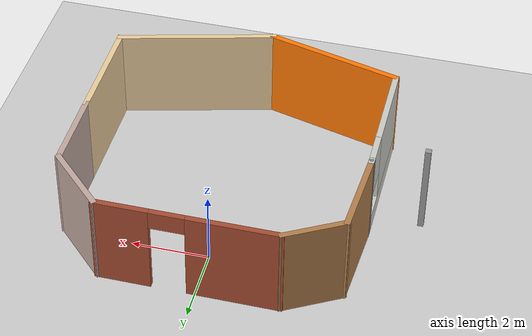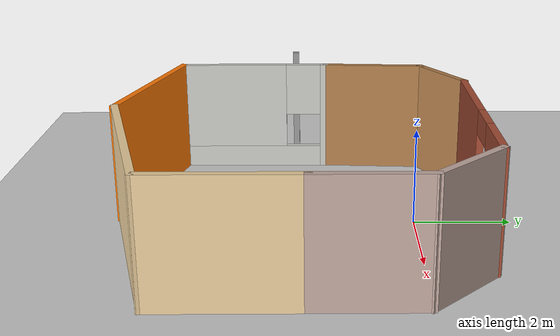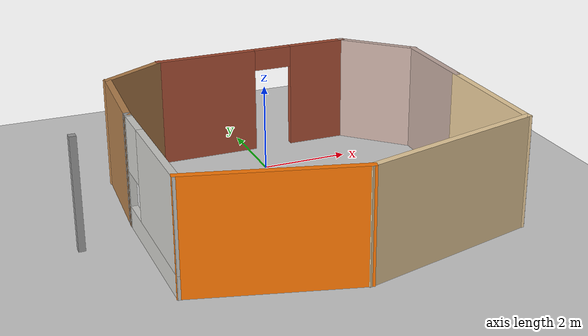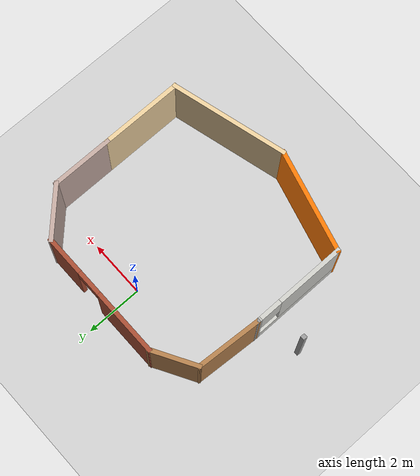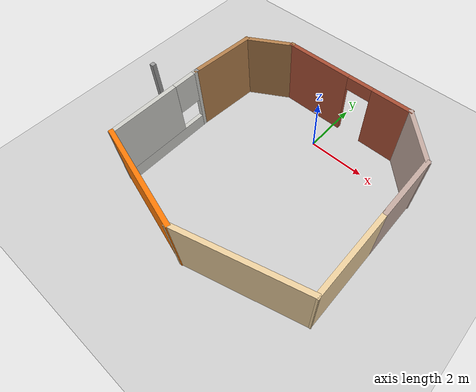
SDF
<sdf version="1.7">
 <world name="default">
  <light name="sun" type="directional">
   <pose>0 0 10 0 -0 0</pose>
   <diffuse>0.8 0.8 0.8 1</diffuse>
   <specular>0.2 0.2 0.2 1</specular>
   <attenuation>
    <range>1000</range>
    <constant>0.9</constant>
    <linear>0.01</linear>
    <quadratic>0.001</quadratic>
   </attenuation>
   <direction>-0.5 0.1 -0.9</direction>
   <spot><inner_angle>0</inner_angle><outer_angle>0</outer_angle><falloff>0</falloff></spot>
  </light>
  <model name="ground_plane">
   <static>1</static>
   <link name="link">
    <collision name="collision">
     <geometry><plane><normal>0 0 1</normal><size>100 100</size></plane></geometry>
     <surface>
      <contact><collide_bitmask>65535</collide_bitmask></contact>
      <friction><ode><mu>100</mu><mu2>50</mu2></ode></friction>
     </surface>
    </collision>
    <visual name="visual">
     <cast_shadows>0</cast_shadows>
     <geometry><plane><normal>0 0 1</normal><size>100 100</size></plane></geometry>
     <material>
      <script><uri>file://media/materials/scripts/gazebo.material</uri><name>Gazebo/Grey</name></script>
     </material>
    </visual>
   </link>
  </model>
  <gravity>0 0 -9.8</gravity>
  <magnetic_field>6e-06 2.3e-05 -4.2e-05</magnetic_field>
  <atmosphere type="adiabatic"/>
  <physics type="ode">
   <max_step_size>0.001</max_step_size>
   <real_time_factor>1</real_time_factor>
   <real_time_update_rate>1000</real_time_update_rate>
  </physics>
  <scene><ambient>0.4 0.4 0.4 1</ambient><background>0.7 0.7 0.7 1</background><shadows>1</shadows></scene>
  <audio><device>default</device></audio>
  <spherical_coordinates>
   <surface_model>EARTH_WGS84</surface_model>
   <latitude_deg>0</latitude_deg>
   <longitude_deg>0</longitude_deg>
   <elevation>0</elevation>
   <heading_deg>0</heading_deg>
  </spherical_coordinates>
  <model name="my_building">
   <pose>-0.555652 -2.40499 0 0 -0 0</pose>
   <link name="Wall_11">
    <pose>-3.09435 -1.06001 0 0 -0 -1.5708</pose>
    <visual name="Wall_11_Visual_0">
     <pose>-1.64608 0 1.25 0 -0 0</pose>
     <geometry><box><size>0.207832 0.15 2.5</size></box></geometry>
     <material>
      <script><uri>file://media/materials/scripts/gazebo.material</uri><name>Gazebo/CeilingTiled</name></script>
      <ambient>1 1 1 1</ambient>
     </material>
     <meta><layer>0</layer></meta>
    </visual>
    <collision name="Wall_11_Collision_0">
     <geometry><box><size>0.207832 0.15 2.5</size></box></geometry>
     <pose>-1.64608 0 1.25 0 -0 0</pose>
    </collision>
    <visual name="Wall_11_Visual_1">
     <pose>0.103916 0 0.25 0 -0 0</pose>
     <geometry><box><size>3.29217 0.15 0.5</size></box></geometry>
     <material>
      <script><uri>file://media/materials/scripts/gazebo.material</uri><name>Gazebo/CeilingTiled</name></script>
      <ambient>1 1 1 1</ambient>
     </material>
     <meta><layer>0</layer></meta>
    </visual>
    <collision name="Wall_11_Collision_1">
     <geometry><box><size>3.29217 0.15 0.5</size></box></geometry>
     <pose>0.103916 0 0.25 0 -0 0</pose>
    </collision>
    <visual name="Wall_11_Visual_2">
     <pose>0.503916 0 1.5 0 -0 0</pose>
     <geometry><box><size>2.49217 0.15 2</size></box></geometry>
     <material>
      <script><uri>file://media/materials/scripts/gazebo.material</uri><name>Gazebo/CeilingTiled</name></script>
      <ambient>1 1 1 1</ambient>
     </material>
     <meta><layer>0</layer></meta>
    </visual>
    <collision name="Wall_11_Collision_2">
     <geometry><box><size>2.49217 0.15 2</size></box></geometry>
     <pose>0.503916 0 1.5 0 -0 0</pose>
    </collision>
    <visual name="Wall_11_Visual_3">
     <pose>-1.14217 0 1.9 0 -0 0</pose>
     <geometry><box><size>0.8 0.15 1.2</size></box></geometry>
     <material>
      <script><uri>file://media/materials/scripts/gazebo.material</uri><name>Gazebo/CeilingTiled</name></script>
      <ambient>1 1 1 1</ambient>
     </material>
     <meta><layer>0</layer></meta>
    </visual>
    <collision name="Wall_11_Collision_3">
     <geometry><box><size>0.8 0.15 1.2</size></box></geometry>
     <pose>-1.14217 0 1.9 0 -0 0</pose>
    </collision>
   </link>
   <link name="Wall_12">
    <collision name="Wall_12_Collision">
     <geometry><box><size>3.75 0.15 2.5</size></box></geometry>
     <pose>0 0 1.25 0 -0 0</pose>
    </collision>
    <visual name="Wall_12_Visual">
     <pose>0 0 1.25 0 -0 0</pose>
     <geometry><box><size>3.75 0.15 2.5</size></box></geometry>
     <material>
      <script><uri>file://media/materials/scripts/gazebo.material</uri><name>Gazebo/Grey</name></script>
      <ambient>0.996078 0.47451 0.0196078 1</ambient>
     </material>
     <meta><layer>0</layer></meta>
    </visual>
    <pose>-1.35568 -3.20088 0 0 -0 -0.261799</pose>
   </link>
   <link name="Wall_13">
    <collision name="Wall_13_Collision">
     <geometry><box><size>4.25 0.15 2.5</size></box></geometry>
     <pose>0 0 1.25 0 -0 0</pose>
    </collision>
    <visual name="Wall_13_Visual">
     <pose>0 0 1.25 0 -0 0</pose>
     <geometry><box><size>4.25 0.15 2.5</size></box></geometry>
     <material>
      <script><uri>file://media/materials/scripts/gazebo.material</uri><name>Gazebo/Grey</name></script>
      <ambient>0.921569 0.807843 0.615686 1</ambient>
     </material>
     <meta><layer>0</layer></meta>
    </visual>
    <pose>2.36313 -3.13618 0 0 -0 0.261799</pose>
   </link>
   <link name="Wall_14">
    <collision name="Wall_14_Collision">
     <geometry><box><size>3 0.15 2.5</size></box></geometry>
     <pose>0 0 1.25 0 -0 0</pose>
    </collision>
    <visual name="Wall_14_Visual">
     <pose>0 0 1.25 0 -0 0</pose>
     <geometry><box><size>3 0.15 2.5</size></box></geometry>
     <material>
      <script><uri>file://media/materials/scripts/gazebo.material</uri><name>Gazebo/Grey</name></script>
      <ambient>0.921569 0.807843 0.615686 1</ambient>
     </material>
     <meta><layer>0</layer></meta>
    </visual>
    <pose>4.34328 -1.1806 0 0 -0 1.5708</pose>
   </link>
   <link name="Wall_15">
    <collision name="Wall_15_Collision">
     <geometry><box><size>2.25 0.15 2.5</size></box></geometry>
     <pose>0 0 1.25 0 -0 0</pose>
    </collision>
    <visual name="Wall_15_Visual">
     <pose>0 0 1.25 0 -0 0</pose>
     <geometry><box><size>2.25 0.15 2.5</size></box></geometry>
     <material>
      <script><uri>file://media/materials/scripts/gazebo.material</uri><name>Gazebo/Grey</name></script>
      <ambient>0.760784 0.662745 0.627451 1</ambient>
     </material>
     <meta><layer>0</layer></meta>
    </visual>
    <pose>4.34328 1.2944 0 0 -0 1.5708</pose>
   </link>
   <link name="Wall_16">
    <collision name="Wall_16_Collision">
     <geometry><box><size>2 0.15 2.5</size></box></geometry>
     <pose>0 0 1.25 0 -0 0</pose>
    </collision>
    <visual name="Wall_16_Visual">
     <pose>0 0 1.25 0 -0 0</pose>
     <geometry><box><size>2 0.15 2.5</size></box></geometry>
     <material>
      <script><uri>file://media/materials/scripts/gazebo.material</uri><name>Gazebo/Grey</name></script>
      <ambient>0.760784 0.662745 0.627451 1</ambient>
     </material>
     <meta><layer>0</layer></meta>
    </visual>
    <pose>3.68921 2.99847 0 0 -0 2.35619</pose>
   </link>
   <link name="Wall_17">
    <pose>0.735133 3.65255 0 0 -0 3.14159</pose>
    <visual name="Wall_17_Visual_0">
     <pose>-1.65235 0 1.25 0 -0 0</pose>
     <geometry><box><size>1.44529 0.15 2.5</size></box></geometry>
     <material>
      <script><uri>file://media/materials/scripts/gazebo.material</uri><name>Gazebo/Bricks</name></script>
      <ambient>1 1 1 1</ambient>
     </material>
     <meta><layer>0</layer></meta>
    </visual>
    <collision name="Wall_17_Collision_0">
     <geometry><box><size>1.44529 0.15 2.5</size></box></geometry>
     <pose>-1.65235 0 1.25 0 -0 0</pose>
    </collision>
    <visual name="Wall_17_Visual_1">
     <pose>1.17265 0 1.25 0 -0 0</pose>
     <geometry><box><size>2.40471 0.15 2.5</size></box></geometry>
     <material>
      <script><uri>file://media/materials/scripts/gazebo.material</uri><name>Gazebo/Bricks</name></script>
      <ambient>1 1 1 1</ambient>
     </material>
     <meta><layer>0</layer></meta>
    </visual>
    <collision name="Wall_17_Collision_1">
     <geometry><box><size>2.40471 0.15 2.5</size></box></geometry>
     <pose>1.17265 0 1.25 0 -0 0</pose>
    </collision>
    <visual name="Wall_17_Visual_2">
     <pose>-0.479709 0 2.25 0 -0 0</pose>
     <geometry><box><size>0.9 0.15 0.5</size></box></geometry>
     <material>
      <script><uri>file://media/materials/scripts/gazebo.material</uri><name>Gazebo/Bricks</name></script>
      <ambient>1 1 1 1</ambient>
     </material>
     <meta><layer>0</layer></meta>
    </visual>
    <collision name="Wall_17_Collision_2">
     <geometry><box><size>0.9 0.15 0.5</size></box></geometry>
     <pose>-0.479709 0 2.25 0 -0 0</pose>
    </collision>
   </link>
   <link name="Wall_18">
    <collision name="Wall_18_Collision">
     <geometry><box><size>1.75 0.15 2.5</size></box></geometry>
     <pose>0 0 1.25 0 -0 0</pose>
    </collision>
    <visual name="Wall_18_Visual">
     <pose>0 0 1.25 0 -0 0</pose>
     <geometry><box><size>1.75 0.15 2.5</size></box></geometry>
     <material>
      <script><uri>file://media/materials/scripts/gazebo.material</uri><name>Gazebo/Wood</name></script>
      <ambient>1 1 1 1</ambient>
     </material>
     <meta><layer>0</layer></meta>
    </visual>
    <pose>-2.25769 3.25255 0 0 -0 -2.61799</pose>
   </link>
   <link name="Wall_19">
    <collision name="Wall_19_Collision">
     <geometry><box><size>2.39218 0.15 2.5</size></box></geometry>
     <pose>0 0 1.25 0 -0 0</pose>
    </collision>
    <visual name="Wall_19_Visual">
     <pose>0 0 1.25 0 -0 0</pose>
     <geometry><box><size>2.39218 0.15 2.5</size></box></geometry>
     <material>
      <script><uri>file://media/materials/scripts/gazebo.material</uri><name>Gazebo/Wood</name></script>
      <ambient>1 1 1 1</ambient>
     </material>
     <meta><layer>0</layer></meta>
    </visual>
    <pose>-3.02243 1.73377 0 0 -0 -1.63499</pose>
   </link>
   <link name="Wall_20">
    <collision name="Wall_20_Collision">
     <geometry><box><size>0.15 0.15 2.5</size></box></geometry>
     <pose>0 0 1.25 0 -0 0</pose>
    </collision>
    <visual name="Wall_20_Visual">
     <pose>0 0 1.25 0 -0 0</pose>
     <geometry><box><size>0.15 0.15 2.5</size></box></geometry>
     <material>
      <script><uri>file://media/materials/scripts/gazebo.material</uri><name>Gazebo/Grey</name></script>
      <ambient>1 1 1 1</ambient>
     </material>
     <meta><layer>0</layer></meta>
    </visual>
    <pose>-3.09435 0.614991 0 0 -0 0</pose>
   </link>
   <link name="Wall_21">
    <collision name="Wall_21_Collision">
     <geometry><box><size>0.15 0.15 2.5</size></box></geometry>
     <pose>0 0 1.25 0 -0 0</pose>
    </collision>
    <visual name="Wall_21_Visual">
     <pose>0 0 1.25 0 -0 0</pose>
     <geometry><box><size>0.15 0.15 2.5</size></box></geometry>
     <material>
      <script><uri>file://media/materials/scripts/gazebo.material</uri><name>Gazebo/Grey</name></script>
      <ambient>1 1 1 1</ambient>
     </material>
     <meta><layer>0</layer></meta>
    </visual>
    <pose>-3.09435 0.614991 0 0 -0 0</pose>
   </link>
   <link name="Wall_8">
    <collision name="Wall_8_Collision">
     <geometry><box><size>0.15 0.15 2.5</size></box></geometry>
     <pose>0 0 1.25 0 -0 0</pose>
    </collision>
    <visual name="Wall_8_Visual">
     <pose>0 0 1.25 0 -0 0</pose>
     <geometry><box><size>0.15 0.15 2.5</size></box></geometry>
     <material>
      <script><uri>file://media/materials/scripts/gazebo.material</uri><name>Gazebo/Grey</name></script>
      <ambient>1 1 1 1</ambient>
     </material>
     <meta><layer>0</layer></meta>
    </visual>
    <pose>-4.37435 -0.105009 0 0 -0 0</pose>
   </link>
   <static>1</static>
  </model>
 </world>
</sdf>
